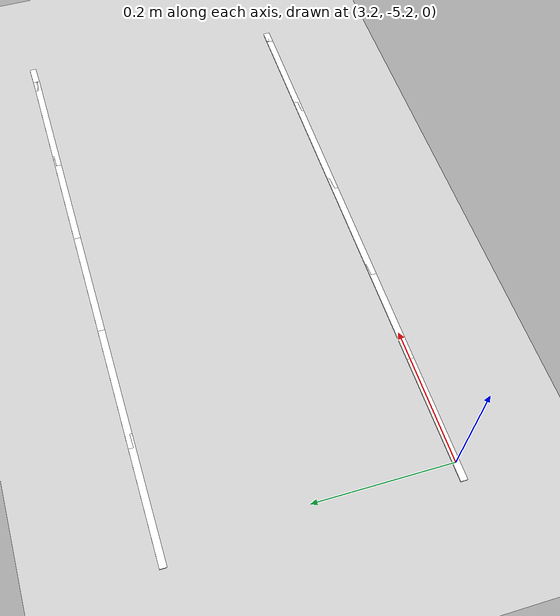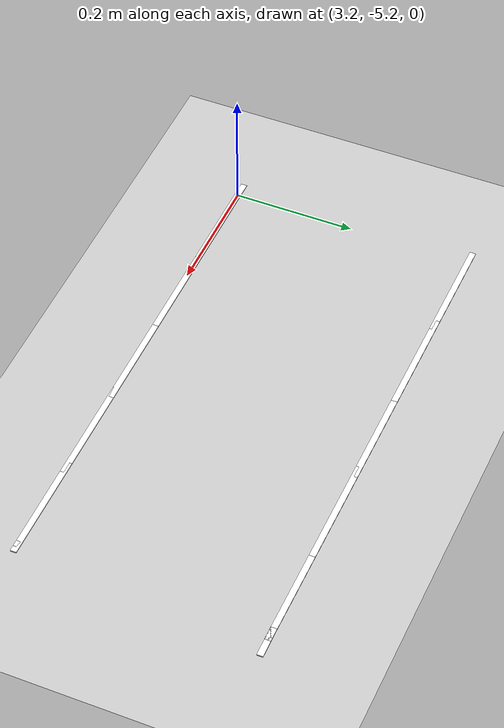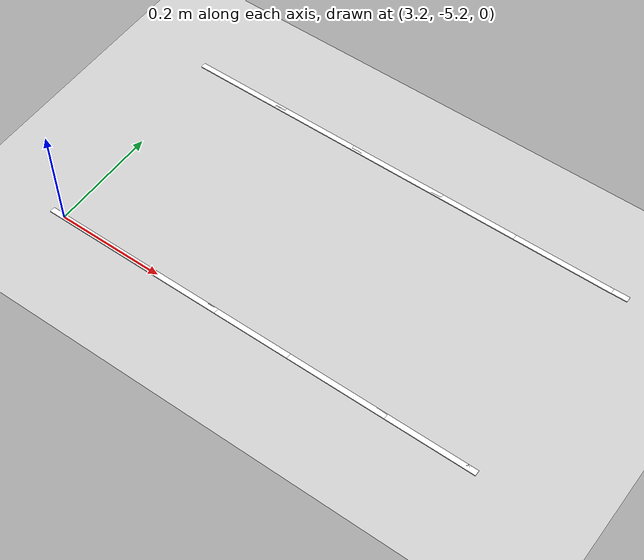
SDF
<sdf version="1.7">
 <world name="default">
  <model name="ground_plane">
   <static>1</static>
   <link name="link">
    <collision name="collision">
     <geometry><plane><normal>0 0 1</normal><size>100 100</size></plane></geometry>
     <surface>
      <contact><collide_bitmask>65535</collide_bitmask></contact>
      <friction><ode><mu>100</mu><mu2>50</mu2></ode></friction>
     </surface>
    </collision>
    <visual name="visual">
     <cast_shadows>0</cast_shadows>
     <geometry><plane><normal>0 0 1</normal><size>100 100</size></plane></geometry>
     <material>
      <script><uri>file://media/materials/scripts/gazebo.material</uri><name>Gazebo/Grey</name></script>
     </material>
    </visual>
   </link>
  </model>
  <model name="lane_line_left_44">
   <static>1</static>
   <link name="link">
    <pose>0 0 -0.004 0 -0 0</pose>
    <visual name="visual">
     <geometry><box><size>0.1833 0.01 0.01</size></box></geometry>
     <material><ambient>1 1 1 1</ambient><diffuse>1 1 1 1</diffuse></material>
    </visual>
    <collision name="collision"><geometry><box><size>0.1833 0.01 0.01</size></box></geometry></collision>
   </link>
   <pose>3.26531 -4.8 0 0 -0 0</pose>
  </model>
  <model name="lane_line_right_44">
   <static>1</static>
   <link name="link">
    <pose>0 0 -0.004 0 -0 0</pose>
    <visual name="visual">
     <geometry><box><size>0.1833 0.01 0.01</size></box></geometry>
     <material><ambient>1 1 1 1</ambient><diffuse>1 1 1 1</diffuse></material>
    </visual>
    <collision name="collision"><geometry><box><size>0.1833 0.01 0.01</size></box></geometry></collision>
   </link>
   <pose>3.26531 -5.2 0 0 -0 0</pose>
  </model>
  <model name="lane_line_left_45">
   <static>1</static>
   <link name="link">
    <pose>0 0 -0.004 0 -0 0</pose>
    <visual name="visual">
     <geometry><box><size>0.1833 0.01 0.01</size></box></geometry>
     <material><ambient>1 1 1 1</ambient><diffuse>1 1 1 1</diffuse></material>
    </visual>
    <collision name="collision"><geometry><box><size>0.1833 0.01 0.01</size></box></geometry></collision>
   </link>
   <pose>3.42857 -4.8 0 0 -0 0</pose>
  </model>
  <model name="lane_line_right_45">
   <static>1</static>
   <link name="link">
    <pose>0 0 -0.004 0 -0 0</pose>
    <visual name="visual">
     <geometry><box><size>0.1833 0.01 0.01</size></box></geometry>
     <material><ambient>1 1 1 1</ambient><diffuse>1 1 1 1</diffuse></material>
    </visual>
    <collision name="collision"><geometry><box><size>0.1833 0.01 0.01</size></box></geometry></collision>
   </link>
   <pose>3.42857 -5.2 0 0 -0 0</pose>
  </model>
  <model name="lane_line_left_46">
   <static>1</static>
   <link name="link">
    <pose>0 0 -0.004 0 -0 0</pose>
    <visual name="visual">
     <geometry><box><size>0.1833 0.01 0.01</size></box></geometry>
     <material><ambient>1 1 1 1</ambient><diffuse>1 1 1 1</diffuse></material>
    </visual>
    <collision name="collision"><geometry><box><size>0.1833 0.01 0.01</size></box></geometry></collision>
   </link>
   <pose>3.59184 -4.8 0 0 -0 0</pose>
  </model>
  <model name="lane_line_right_46">
   <static>1</static>
   <link name="link">
    <pose>0 0 -0.004 0 -0 0</pose>
    <visual name="visual">
     <geometry><box><size>0.1833 0.01 0.01</size></box></geometry>
     <material><ambient>1 1 1 1</ambient><diffuse>1 1 1 1</diffuse></material>
    </visual>
    <collision name="collision"><geometry><box><size>0.1833 0.01 0.01</size></box></geometry></collision>
   </link>
   <pose>3.59184 -5.2 0 0 -0 0</pose>
  </model>
  <model name="lane_line_left_47">
   <static>1</static>
   <link name="link">
    <pose>0 0 -0.004 0 -0 0</pose>
    <visual name="visual">
     <geometry><box><size>0.1833 0.01 0.01</size></box></geometry>
     <material><ambient>1 1 1 1</ambient><diffuse>1 1 1 1</diffuse></material>
    </visual>
    <collision name="collision"><geometry><box><size>0.1833 0.01 0.01</size></box></geometry></collision>
   </link>
   <pose>3.7551 -4.8 0 0 -0 0</pose>
  </model>
  <model name="lane_line_right_47">
   <static>1</static>
   <link name="link">
    <pose>0 0 -0.004 0 -0 0</pose>
    <visual name="visual">
     <geometry><box><size>0.1833 0.01 0.01</size></box></geometry>
     <material><ambient>1 1 1 1</ambient><diffuse>1 1 1 1</diffuse></material>
    </visual>
    <collision name="collision"><geometry><box><size>0.1833 0.01 0.01</size></box></geometry></collision>
   </link>
   <pose>3.7551 -5.2 0 0 -0 0</pose>
  </model>
  <model name="lane_line_left_48">
   <static>1</static>
   <link name="link">
    <pose>0 0 -0.004 0 -0 0</pose>
    <visual name="visual">
     <geometry><box><size>0.1833 0.01 0.01</size></box></geometry>
     <material><ambient>1 1 1 1</ambient><diffuse>1 1 1 1</diffuse></material>
    </visual>
    <collision name="collision"><geometry><box><size>0.1833 0.01 0.01</size></box></geometry></collision>
   </link>
   <pose>3.91837 -4.8 0 0 -0 0</pose>
  </model>
  <model name="lane_line_right_48">
   <static>1</static>
   <link name="link">
    <pose>0 0 -0.004 0 -0 0</pose>
    <visual name="visual">
     <geometry><box><size>0.1833 0.01 0.01</size></box></geometry>
     <material><ambient>1 1 1 1</ambient><diffuse>1 1 1 1</diffuse></material>
    </visual>
    <collision name="collision"><geometry><box><size>0.1833 0.01 0.01</size></box></geometry></collision>
   </link>
   <pose>3.91837 -5.2 0 0 -0 0</pose>
  </model>
  <model name="lane_line_left_49">
   <static>1</static>
   <link name="link">
    <pose>0 0 -0.004 0 -0 0</pose>
    <visual name="visual">
     <geometry><box><size>0.02 0.01 0.01</size></box></geometry>
     <material><ambient>1 1 1 1</ambient><diffuse>1 1 1 1</diffuse></material>
    </visual>
    <collision name="collision"><geometry><box><size>0.02 0.01 0.01</size></box></geometry></collision>
   </link>
   <pose>4 -4.8 0 0 -0 0</pose>
  </model>
  <model name="lane_line_right_49">
   <static>1</static>
   <link name="link">
    <pose>0 0 -0.004 0 -0 0</pose>
    <visual name="visual">
     <geometry><box><size>0.02 0.01 0.01</size></box></geometry>
     <material><ambient>1 1 1 1</ambient><diffuse>1 1 1 1</diffuse></material>
    </visual>
    <collision name="collision"><geometry><box><size>0.02 0.01 0.01</size></box></geometry></collision>
   </link>
   <pose>4 -5.2 0 0 -0 0</pose>
  </model>
  <model name="lane_line_left_50">
   <static>1</static>
   <link name="link">
    <pose>0 0 -0.004 0 -0 0</pose>
    <visual name="visual">
     <geometry><box><size>0.0521 0.01 0.01</size></box></geometry>
     <material><ambient>1 1 1 1</ambient><diffuse>1 1 1 1</diffuse></material>
    </visual>
    <collision name="collision"><geometry><box><size>0.0521 0.01 0.01</size></box></geometry></collision>
   </link>
   <pose>4.01282 -4.79977 0 0 -0 0.016029</pose>
  </model>
 </world>
</sdf>
